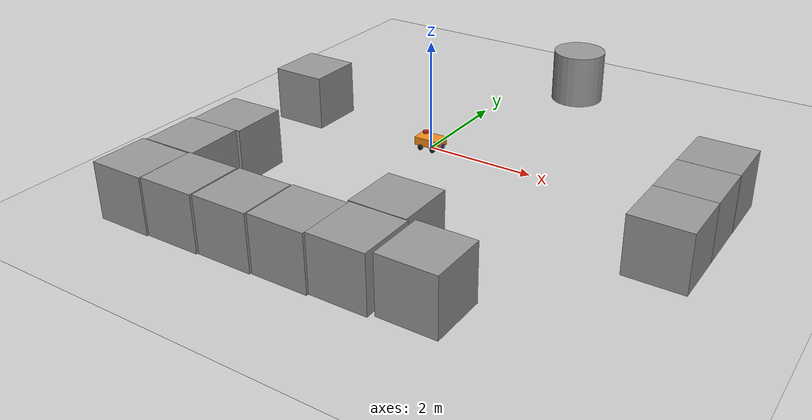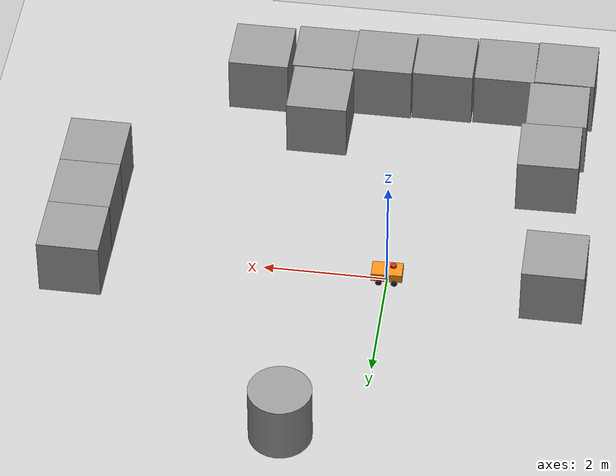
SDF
<sdf version="1.7">
 <world name="default">
  <light name="sun" type="directional">
   <pose>0 0 10 0 -0 0</pose>
   <diffuse>0.8 0.8 0.8 1</diffuse>
   <specular>0.2 0.2 0.2 1</specular>
   <attenuation>
    <range>1000</range>
    <constant>0.9</constant>
    <linear>0.01</linear>
    <quadratic>0.001</quadratic>
   </attenuation>
   <direction>-0.5 0.1 -0.9</direction>
   <spot><inner_angle>0</inner_angle><outer_angle>0</outer_angle><falloff>0</falloff></spot>
  </light>
  <model name="ground_plane">
   <static>1</static>
   <link name="link">
    <collision name="collision">
     <geometry><plane><normal>0 0 1</normal><size>100 100</size></plane></geometry>
     <surface>
      <contact><collide_bitmask>65535</collide_bitmask></contact>
      <friction><ode><mu>100</mu><mu2>50</mu2></ode></friction>
     </surface>
    </collision>
    <visual name="visual">
     <cast_shadows>0</cast_shadows>
     <geometry><plane><normal>0 0 1</normal><size>100 100</size></plane></geometry>
     <material>
      <script><uri>file://media/materials/scripts/gazebo.material</uri><name>Gazebo/Grey</name></script>
     </material>
    </visual>
   </link>
  </model>
  <gravity>0 0 -9.8</gravity>
  <magnetic_field>6e-06 2.3e-05 -4.2e-05</magnetic_field>
  <atmosphere type="adiabatic"/>
  <physics type="ode">
   <max_step_size>0.001</max_step_size>
   <real_time_factor>1</real_time_factor>
   <real_time_update_rate>1000</real_time_update_rate>
  </physics>
  <scene><ambient>0.4 0.4 0.4 1</ambient><background>0.7 0.7 0.7 1</background><shadows>1</shadows></scene>
  <audio><device>default</device></audio>
  <spherical_coordinates>
   <surface_model>EARTH_WGS84</surface_model>
   <latitude_deg>0</latitude_deg>
   <longitude_deg>0</longitude_deg>
   <elevation>0</elevation>
   <heading_deg>0</heading_deg>
  </spherical_coordinates>
  <model name="pynqcar">
   <link name="base_link">
    <inertial>
     <pose>0.021429 0 0.111429 0 -0 0</pose>
     <mass>0.7</mass>
     <inertia>
      <ixx>0.0075919</ixx>
      <ixy>0</ixy>
      <ixz>0.00342143</ixz>
      <iyy>0.021098</iyy>
      <iyz>0</iyz>
      <izz>0.0213111</izz>
     </inertia>
    </inertial>
    <collision name="base_link_fixed_joint_lump__cat_head_link_collision">
     <pose>0.25 0 0.03 3.14159 1.57079 3.14159</pose>
     <geometry><cylinder><length>0.01</length><radius>0.06</radius></cylinder></geometry>
    </collision>
    <collision name="base_link_fixed_joint_lump__chassis_collision_1">
     <pose>0 0 0.1 0 -0 0</pose>
     <geometry><box><size>0.5 0.3 0.15</size></box></geometry>
    </collision>
    <collision name="base_link_fixed_joint_lump__laser_frame_collision_2">
     <pose>-0.1 0 0.25 0 -0 0</pose>
     <geometry><cylinder><length>0.04</length><radius>0.05</radius></cylinder></geometry>
    </collision>
    <visual name="base_link_fixed_joint_lump__cat_head_link_visual">
     <pose>0.25 0 0.03 3.14159 1.57079 3.14159</pose>
     <geometry><cylinder><length>0.01</length><radius>0.06</radius></cylinder></geometry>
     <material>
      <script><name>Gazebo/Blue</name><uri>file://media/materials/scripts/gazebo.material</uri></script>
     </material>
    </visual>
    <visual name="base_link_fixed_joint_lump__chassis_visual_1">
     <pose>0 0 0.1 0 -0 0</pose>
     <geometry><box><size>0.5 0.3 0.15</size></box></geometry>
     <material>
      <script><name>Gazebo/Orange</name><uri>file://media/materials/scripts/gazebo.material</uri></script>
     </material>
    </visual>
    <visual name="base_link_fixed_joint_lump__laser_frame_visual_2">
     <pose>-0.1 0 0.25 0 -0 0</pose>
     <geometry><cylinder><length>0.04</length><radius>0.05</radius></cylinder></geometry>
     <material>
      <script><name>Gazebo/Red</name><uri>file://media/materials/scripts/gazebo.material</uri></script>
     </material>
    </visual>
    <sensor name="laser" type="ray">
     <visualize>1</visualize>
     <update_rate>10</update_rate>
     <ray>
      <scan>
       <horizontal>
        <samples>360</samples>
        <min_angle>-3.14</min_angle>
        <max_angle>3.14</max_angle>
        <resolution>1</resolution>
       </horizontal>
       <vertical><samples>1</samples><min_angle>0</min_angle><max_angle>0</max_angle></vertical>
      </scan>
      <range><min>0.3</min><max>12</max></range>
     </ray>
     <plugin name="laser_controller" filename="libgazebo_ros_ray_sensor.so">
      <ros><argument>~/out:=scan</argument></ros>
      <output_type>sensor_msgs/LaserScan</output_type>
      <frame_name>laser_frame</frame_name>
     </plugin>
     <pose>-0.1 0 0.25 0 -0 0</pose>
    </sensor>
   </link>
   <joint name="left_back_wheel_joint" type="revolute">
    <pose relative_to="base_link">-0.125 0.15 0 0 -0 0</pose>
    <parent>base_link</parent>
    <child>left_back_wheel_link</child>
    <axis>
     <xyz>0 1 0</xyz>
     <limit><lower>-1e+16</lower><upper>1e+16</upper></limit>
     <dynamics><spring_reference>0</spring_reference><spring_stiffness>0</spring_stiffness></dynamics>
    </axis>
   </joint>
   <link name="left_back_wheel_link">
    <pose relative_to="left_back_wheel_joint">0 0 0 0 -0 0</pose>
    <inertial>
     <mass>0.6</mass>
     <inertia><ixx>0.0006</ixx><ixy>0</ixy><ixz>0</ixz><iyy>0.0006</iyy><iyz>0</iyz><izz>0.0006</izz></inertia>
    </inertial>
    <collision name="left_back_wheel_link_collision">
     <pose>0 0 0 1.5708 -0 0</pose>
     <geometry><cylinder><length>0.04</length><radius>0.05</radius></cylinder></geometry>
     <surface><friction><ode><mu>0.01</mu><mu2>0.01</mu2></ode></friction></surface>
    </collision>
    <visual name="left_back_wheel_link_visual">
     <pose>0 0 0 1.5708 -0 0</pose>
     <geometry><cylinder><length>0.04</length><radius>0.05</radius></cylinder></geometry>
     <material>
      <ambient>0.1764 0.4588 0.8509 1</ambient>
      <diffuse>0.1764 0.4588 0.8509 1</diffuse>
      <specular>0.1764 0.4588 0.8509 1</specular>
      <emissive>0 0 0 0</emissive>
      <script><name>Gazebo/Black</name><uri>file://media/materials/scripts/gazebo.material</uri></script>
     </material>
    </visual>
   </link>
   <joint name="left_front_wheel_joint" type="revolute">
    <pose relative_to="base_link">0.125 0.15 0 0 -0 0</pose>
    <parent>base_link</parent>
    <child>left_front_wheel_link</child>
    <axis>
     <xyz>0 1 0</xyz>
     <limit><lower>-1e+16</lower><upper>1e+16</upper></limit>
     <dynamics><spring_reference>0</spring_reference><spring_stiffness>0</spring_stiffness></dynamics>
    </axis>
   </joint>
   <link name="left_front_wheel_link">
    <pose relative_to="left_front_wheel_joint">0 0 0 0 -0 0</pose>
    <inertial>
     <mass>0.6</mass>
     <inertia><ixx>0.0006</ixx><ixy>0</ixy><ixz>0</ixz><iyy>0.0006</iyy><iyz>0</iyz><izz>0.0006</izz></inertia>
    </inertial>
    <collision name="left_front_wheel_link_collision">
     <pose>0 0 0 1.5708 -0 0</pose>
     <geometry><cylinder><length>0.04</length><radius>0.05</radius></cylinder></geometry>
     <surface><friction><ode><mu>0.01</mu><mu2>0.01</mu2></ode></friction></surface>
    </collision>
    <visual name="left_front_wheel_link_visual">
     <pose>0 0 0 1.5708 -0 0</pose>
     <geometry><cylinder><length>0.04</length><radius>0.05</radius></cylinder></geometry>
     <material>
      <ambient>0.1764 0.4588 0.8509 1</ambient>
      <diffuse>0.1764 0.4588 0.8509 1</diffuse>
      <specular>0.1764 0.4588 0.8509 1</specular>
      <emissive>0 0 0 0</emissive>
      <script><name>Gazebo/Black</name><uri>file://media/materials/scripts/gazebo.material</uri></script>
     </material>
    </visual>
   </link>
   <joint name="right_back_wheel_joint" type="revolute">
    <pose relative_to="base_link">-0.125 -0.15 0 0 -0 0</pose>
    <parent>base_link</parent>
    <child>right_back_wheel_link</child>
    <axis>
     <xyz>0 1 0</xyz>
     <limit><lower>-1e+16</lower><upper>1e+16</upper></limit>
     <dynamics><spring_reference>0</spring_reference><spring_stiffness>0</spring_stiffness></dynamics>
    </axis>
   </joint>
   <link name="right_back_wheel_link">
    <pose relative_to="right_back_wheel_joint">0 0 0 0 -0 0</pose>
    <inertial>
     <mass>0.6</mass>
     <inertia><ixx>0.0006</ixx><ixy>0</ixy><ixz>0</ixz><iyy>0.0006</iyy><iyz>0</iyz><izz>0.0006</izz></inertia>
    </inertial>
    <collision name="right_back_wheel_link_collision">
     <pose>0 0 0 1.5708 -0 0</pose>
     <geometry><cylinder><length>0.04</length><radius>0.05</radius></cylinder></geometry>
     <surface><friction><ode><mu>0.01</mu><mu2>0.01</mu2></ode></friction></surface>
    </collision>
    <visual name="right_back_wheel_link_visual">
     <pose>0 0 0 1.5708 -0 0</pose>
     <geometry><cylinder><length>0.04</length><radius>0.05</radius></cylinder></geometry>
     <material>
      <ambient>0.1764 0.4588 0.8509 1</ambient>
      <diffuse>0.1764 0.4588 0.8509 1</diffuse>
      <specular>0.1764 0.4588 0.8509 1</specular>
      <emissive>0 0 0 0</emissive>
      <script><name>Gazebo/Black</name><uri>file://media/materials/scripts/gazebo.material</uri></script>
     </material>
    </visual>
   </link>
   <joint name="right_front_wheel_joint" type="revolute">
    <pose relative_to="base_link">0.125 -0.15 0 0 -0 0</pose>
    <parent>base_link</parent>
    <child>right_front_wheel_link</child>
    <axis>
     <xyz>0 1 0</xyz>
     <limit><lower>-1e+16</lower><upper>1e+16</upper></limit>
     <dynamics><spring_reference>0</spring_reference><spring_stiffness>0</spring_stiffness></dynamics>
    </axis>
   </joint>
   <link name="right_front_wheel_link">
    <pose relative_to="right_front_wheel_joint">0 0 0 0 -0 0</pose>
    <inertial>
     <mass>0.6</mass>
     <inertia><ixx>0.0006</ixx><ixy>0</ixy><ixz>0</ixz><iyy>0.0006</iyy><iyz>0</iyz><izz>0.0006</izz></inertia>
    </inertial>
    <collision name="right_front_wheel_link_collision">
     <pose>0 0 0 1.5708 -0 0</pose>
     <geometry><cylinder><length>0.04</length><radius>0.05</radius></cylinder></geometry>
     <surface><friction><ode><mu>0.01</mu><mu2>0.01</mu2></ode></friction></surface>
    </collision>
    <visual name="right_front_wheel_link_visual">
     <pose>0 0 0 1.5708 -0 0</pose>
     <geometry><cylinder><length>0.04</length><radius>0.05</radius></cylinder></geometry>
     <material>
      <ambient>0.1764 0.4588 0.8509 1</ambient>
      <diffuse>0.1764 0.4588 0.8509 1</diffuse>
      <specular>0.1764 0.4588 0.8509 1</specular>
      <emissive>0 0 0 0</emissive>
      <script><name>Gazebo/Black</name><uri>file://media/materials/scripts/gazebo.material</uri></script>
     </material>
    </visual>
   </link>
   <static>0</static>
   <plugin name="wheel_drive" filename="libgazebo_ros_planar_move.so">
    <commandTopic>cmd_vel</commandTopic>
    <odometryTopic>odom</odometryTopic>
    <odometryFrame>odom</odometryFrame>
    <odometryRate>50.0</odometryRate>
    <robotBaseFram>base_link</robotBaseFram>
    <front_left_joint>left_front_wheel_joint</front_left_joint>
    <front_right_joint>right_front_wheel_joint</front_right_joint>
    <back_left_joint>left_back_wheel_joint</back_left_joint>
    <back_right_joint>right_back_wheel_joint</back_right_joint>
    <wheel_separation>"chassis_size_y</wheel_separation>
    <odometry_frame>odom</odometry_frame>
    <robot_base_frame>base_link</robot_base_frame>
    <publish_odom>1</publish_odom>
    <publish_odom_tf>1</publish_odom_tf>
    <publish_weel_tf>1</publish_weel_tf>
    <publishWheelJointState>1</publishWheelJointState>
   </plugin>
   <pose>-9e-05 -0.018259 0.049995 1.8e-05 1.3e-05 0.029277</pose>
  </model>
  <model name="unit_box">
   <pose>-2.68891 0.079116 0.5 0 -0 0</pose>
   <link name="link">
    <inertial>
     <mass>1</mass>
     <inertia>
      <ixx>0.166667</ixx>
      <ixy>0</ixy>
      <ixz>0</ixz>
      <iyy>0.166667</iyy>
      <iyz>0</iyz>
      <izz>0.166667</izz>
     </inertia>
    </inertial>
    <collision name="collision"><geometry><box><size>1 1 1</size></box></geometry></collision>
    <visual name="visual">
     <geometry><box><size>1 1 1</size></box></geometry>
     <material>
      <script><name>Gazebo/Grey</name><uri>file://media/materials/scripts/gazebo.material</uri></script>
     </material>
    </visual>
   </link>
  </model>
  <model name="unit_cylinder">
   <pose>1.21771 3.56148 0.499992 -3e-06 3e-06 0</pose>
   <link name="link">
    <inertial>
     <mass>1</mass>
     <inertia><ixx>0.145833</ixx><ixy>0</ixy><ixz>0</ixz><iyy>0.145833</iyy><iyz>0</iyz><izz>0.125</izz></inertia>
    </inertial>
    <collision name="collision">
     <geometry><cylinder><radius>0.5</radius><length>1</length></cylinder></geometry>
    </collision>
    <visual name="visual">
     <geometry><cylinder><radius>0.5</radius><length>1</length></cylinder></geometry>
     <material>
      <script><name>Gazebo/Grey</name><uri>file://media/materials/scripts/gazebo.material</uri></script>
     </material>
    </visual>
   </link>
  </model>
  <model name="unit_box_0">
   <pose>-2.37348 -2.41724 0.5 0 -0 0.016973</pose>
   <link name="link">
    <inertial>
     <mass>1</mass>
     <inertia>
      <ixx>0.166667</ixx>
      <ixy>0</ixy>
      <ixz>0</ixz>
      <iyy>0.166667</iyy>
      <iyz>0</iyz>
      <izz>0.166667</izz>
     </inertia>
    </inertial>
    <collision name="collision"><geometry><box><size>1 1 1</size></box></geometry></collision>
    <visual name="visual">
     <geometry><box><size>1 1 1</size></box></geometry>
     <material>
      <script><name>Gazebo/Grey</name><uri>file://media/materials/scripts/gazebo.material</uri></script>
     </material>
    </visual>
   </link>
  </model>
  <model name="unit_box_1">
   <pose>-2.41942 -3.41816 0.5 0 -0 0.016973</pose>
   <link name="link">
    <inertial>
     <mass>1</mass>
     <inertia>
      <ixx>0.166667</ixx>
      <ixy>0</ixy>
      <ixz>0</ixz>
      <iyy>0.166667</iyy>
      <iyz>0</iyz>
      <izz>0.166667</izz>
     </inertia>
    </inertial>
    <collision name="collision"><geometry><box><size>1 1 1</size></box></geometry></collision>
    <visual name="visual">
     <geometry><box><size>1 1 1</size></box></geometry>
     <material>
      <script><name>Gazebo/Grey</name><uri>file://media/materials/scripts/gazebo.material</uri></script>
     </material>
    </visual>
   </link>
  </model>
  <model name="unit_box_2">
   <pose>-2.47663 -4.43696 0.5 0 0 -0.00269</pose>
   <link name="link">
    <inertial>
     <mass>1</mass>
     <inertia>
      <ixx>0.166667</ixx>
      <ixy>0</ixy>
      <ixz>0</ixz>
      <iyy>0.166667</iyy>
      <iyz>0</iyz>
      <izz>0.166667</izz>
     </inertia>
    </inertial>
    <collision name="collision"><geometry><box><size>1 1 1</size></box></geometry></collision>
    <visual name="visual">
     <geometry><box><size>1 1 1</size></box></geometry>
     <material>
      <script><name>Gazebo/Grey</name><uri>file://media/materials/scripts/gazebo.material</uri></script>
     </material>
    </visual>
   </link>
  </model>
  <model name="unit_box_3">
   <pose>-1.47255 -4.4078 0.5 0 -0 0.0058</pose>
   <link name="link">
    <inertial>
     <mass>1</mass>
     <inertia>
      <ixx>0.166667</ixx>
      <ixy>0</ixy>
      <ixz>0</ixz>
      <iyy>0.166667</iyy>
      <iyz>0</iyz>
      <izz>0.166667</izz>
     </inertia>
    </inertial>
    <collision name="collision"><geometry><box><size>1 1 1</size></box></geometry></collision>
    <visual name="visual">
     <geometry><box><size>1 1 1</size></box></geometry>
     <material>
      <script><name>Gazebo/Grey</name><uri>file://media/materials/scripts/gazebo.material</uri></script>
     </material>
    </visual>
   </link>
  </model>
  <model name="unit_box_4">
   <pose>-0.444476 -4.38186 0.5 0 -0 0</pose>
   <link name="link">
    <inertial>
     <mass>1</mass>
     <inertia>
      <ixx>0.166667</ixx>
      <ixy>0</ixy>
      <ixz>0</ixz>
      <iyy>0.166667</iyy>
      <iyz>0</iyz>
      <izz>0.166667</izz>
     </inertia>
    </inertial>
    <collision name="collision"><geometry><box><size>1 1 1</size></box></geometry></collision>
    <visual name="visual">
     <geometry><box><size>1 1 1</size></box></geometry>
     <material>
      <script><name>Gazebo/Grey</name><uri>file://media/materials/scripts/gazebo.material</uri></script>
     </material>
    </visual>
   </link>
  </model>
  <model name="unit_box_5">
   <pose>0.576147 -4.35647 0.5 0 -0 0.001372</pose>
   <link name="link">
    <inertial>
     <mass>1</mass>
     <inertia>
      <ixx>0.166667</ixx>
      <ixy>0</ixy>
      <ixz>0</ixz>
      <iyy>0.166667</iyy>
      <iyz>0</iyz>
      <izz>0.166667</izz>
     </inertia>
    </inertial>
    <collision name="collision"><geometry><box><size>1 1 1</size></box></geometry></collision>
    <visual name="visual">
     <geometry><box><size>1 1 1</size></box></geometry>
     <material>
      <script><name>Gazebo/Grey</name><uri>file://media/materials/scripts/gazebo.material</uri></script>
     </material>
    </visual>
   </link>
  </model>
  <model name="unit_box_6">
   <pose>1.57609 -4.31279 0.5 0 -0 0.001371</pose>
   <link name="link">
    <inertial>
     <mass>1</mass>
     <inertia>
      <ixx>0.166667</ixx>
      <ixy>0</ixy>
      <ixz>0</ixz>
      <iyy>0.166667</iyy>
      <iyz>0</iyz>
      <izz>0.166667</izz>
     </inertia>
    </inertial>
    <collision name="collision"><geometry><box><size>1 1 1</size></box></geometry></collision>
    <visual name="visual">
     <geometry><box><size>1 1 1</size></box></geometry>
     <material>
      <script><name>Gazebo/Grey</name><uri>file://media/materials/scripts/gazebo.material</uri></script>
     </material>
    </visual>
   </link>
  </model>
  <model name="unit_box_7">
   <pose>2.64842 -4.23521 0.5 -0 -0 -0</pose>
   <link name="link">
    <inertial>
     <mass>1</mass>
     <inertia>
      <ixx>0.166667</ixx>
      <ixy>0</ixy>
      <ixz>0</ixz>
      <iyy>0.166667</iyy>
      <iyz>0</iyz>
      <izz>0.166667</izz>
     </inertia>
    </inertial>
    <collision name="collision"><geometry><box><size>1 1 1</size></box></geometry></collision>
    <visual name="visual">
     <geometry><box><size>1 1 1</size></box></geometry>
     <material>
      <script><name>Gazebo/Grey</name><uri>file://media/materials/scripts/gazebo.material</uri></script>
     </material>
    </visual>
   </link>
  </model>
  <model name="unit_box_8">
   <pose>1.53606 -3.29975 0.5 0 -0 0</pose>
   <link name="link">
    <inertial>
     <mass>1</mass>
     <inertia>
      <ixx>0.166667</ixx>
      <ixy>0</ixy>
      <ixz>0</ixz>
      <iyy>0.166667</iyy>
      <iyz>0</iyz>
      <izz>0.166667</izz>
     </inertia>
    </inertial>
    <collision name="collision"><geometry><box><size>1 1 1</size></box></geometry></collision>
    <visual name="visual">
     <geometry><box><size>1 1 1</size></box></geometry>
     <material>
      <script><name>Gazebo/Grey</name><uri>file://media/materials/scripts/gazebo.material</uri></script>
     </material>
    </visual>
   </link>
  </model>
  <model name="unit_box_9">
   <pose>5.00564 0.466758 0.499995 1e-05 -0 -0.001679</pose>
   <link name="link">
    <inertial>
     <mass>1</mass>
     <inertia>
      <ixx>0.166667</ixx>
      <ixy>0</ixy>
      <ixz>0</ixz>
      <iyy>0.166667</iyy>
      <iyz>0</iyz>
      <izz>0.166667</izz>
     </inertia>
    </inertial>
    <collision name="collision"><geometry><box><size>1 1 1</size></box></geometry></collision>
    <visual name="visual">
     <geometry><box><size>1 1 1</size></box></geometry>
     <material>
      <script><name>Gazebo/Grey</name><uri>file://media/materials/scripts/gazebo.material</uri></script>
     </material>
    </visual>
   </link>
  </model>
  <model name="unit_box_10">
   <pose>5.00133 -0.533412 0.5 -0 -0 -0.001637</pose>
   <link name="link">
    <inertial>
     <mass>1</mass>
     <inertia>
      <ixx>0.166667</ixx>
      <ixy>0</ixy>
      <ixz>0</ixz>
      <iyy>0.166667</iyy>
      <iyz>0</iyz>
      <izz>0.166667</izz>
     </inertia>
    </inertial>
    <collision name="collision"><geometry><box><size>1 1 1</size></box></geometry></collision>
    <visual name="visual">
     <geometry><box><size>1 1 1</size></box></geometry>
     <material>
      <script><name>Gazebo/Grey</name><uri>file://media/materials/scripts/gazebo.material</uri></script>
     </material>
    </visual>
   </link>
  </model>
  <model name="unit_box_11">
   <pose>5.00023 -1.53345 0.5 0 -0 -0.00169</pose>
   <link name="link">
    <inertial>
     <mass>1</mass>
     <inertia>
      <ixx>0.166667</ixx>
      <ixy>0</ixy>
      <ixz>0</ixz>
      <iyy>0.166667</iyy>
      <iyz>0</iyz>
      <izz>0.166667</izz>
     </inertia>
    </inertial>
    <collision name="collision"><geometry><box><size>1 1 1</size></box></geometry></collision>
    <visual name="visual">
     <geometry><box><size>1 1 1</size></box></geometry>
     <material>
      <script><name>Gazebo/Grey</name><uri>file://media/materials/scripts/gazebo.material</uri></script>
     </material>
    </visual>
   </link>
  </model>
 </world>
</sdf>
